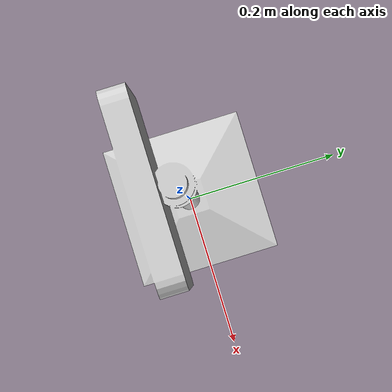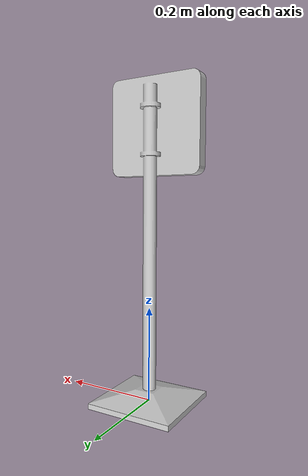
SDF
<?xml version='1.0'?>
<sdf version='1.7'>
  <model name='two_sided_way'>
    <model name='signs'>
      <static>1</static>
      <pose>2e-06 -4e-06 0 0 -0 0</pose>
      <link name='iki_yonlu_yol'>
        <pose>0 0 0 0 -0 0</pose>
        <visual name='sign'>
          <geometry>
            <mesh>
              <scale>0.25 0.25 0.25</scale>
              <uri>model://iki_yonlu_yol/meshes/iki_yonlu_yol.dae</uri>
            </mesh>
          </geometry>
        </visual>
        <collision name='collision'>
          <geometry>
            <mesh>
              <scale>0.25 0.25 0.25</scale>
              <uri>model://iki_yonlu_yol/meshes/iki_yonlu_yol.dae</uri>
            </mesh>
          </geometry>
        </collision>
      </link>
    </model>
    <static>0</static>
    <allow_auto_disable>1</allow_auto_disable>
  </model>
</sdf>
